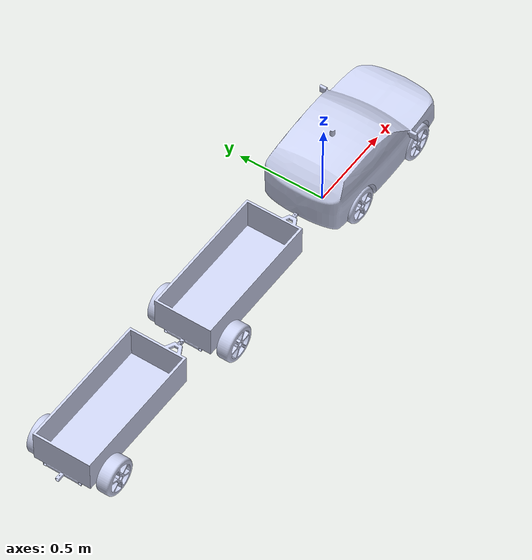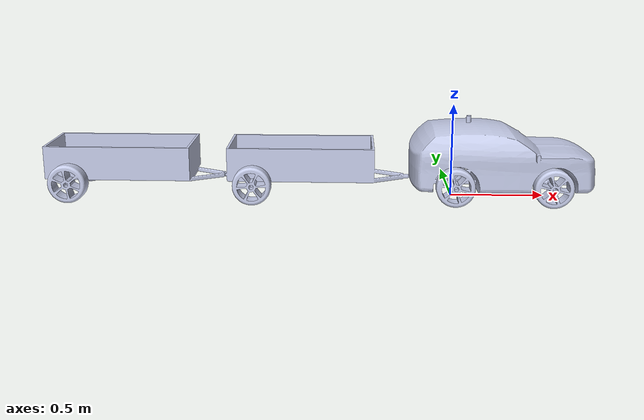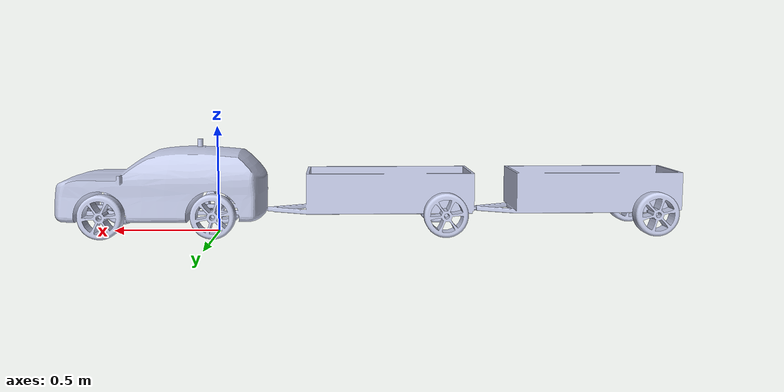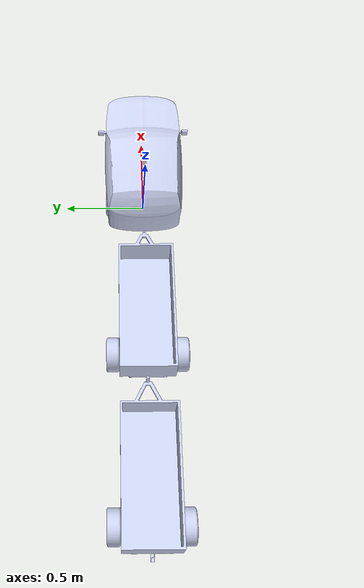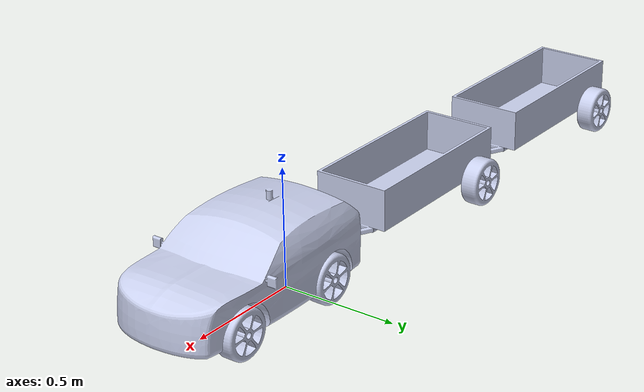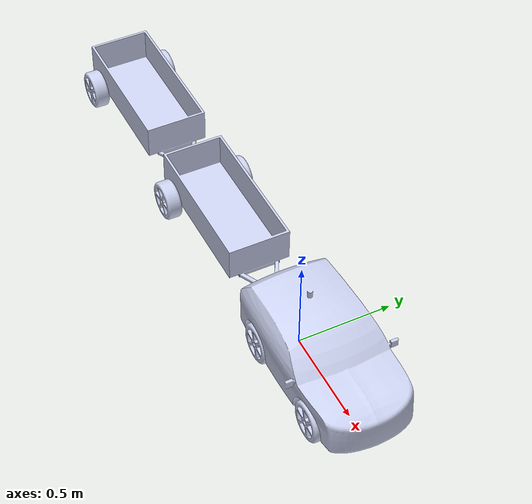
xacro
<?xml version="1.0" ?>

<robot
  name="SUV" xmlns:xacro="https://ros.org/wiki/xacro">
  <link
    name="base_link">
    <inertial>
      <origin
        xyz="0.20578 6.7449E-05 0.23392"
        rpy="0 0 0" />
      <mass
        value="90.229" />
      <inertia
        ixx="2.1481"
        ixy="0.004352"
        ixz="0.4205"
        iyy="6.2811"
        iyz="-0.0018801"
        izz="7.2521" />
    </inertial>
    <visual>
      <origin
        xyz="0 0 0"
        rpy="0 0 0" />
      <geometry>
        <mesh
          filename="package://SUV/meshes/base_link.STL" />
      </geometry>
      <material
        name="">
        <color
          rgba="0.79216 0.81961 0.93333 1" />
      </material>
    </visual>
  </link>

  <link
    name="RearLeftWheel">
    <inertial>
      <origin
        xyz="2.2204E-16 0 2.2204E-16"
        rpy="0 0 0" />
      <mass
        value="1.3962" />
      <inertia
        ixx="0.0051815"
        ixy="-1.0132E-17"
        ixz="-3.1476E-18"
        iyy="0.0090774"
        iyz="-8.3661E-18"
        izz="0.0051815" />
    </inertial>
    <visual>
      <origin
        xyz="0 0 0"
        rpy="0 0 0" />
      <geometry>
        <mesh
          filename="package://SUV/meshes/RearLeftWheel.STL" />
      </geometry>
      <material
        name="">
        <color
          rgba="0.79216 0.81961 0.93333 1" />
      </material>
    </visual>
    <collision>
      <origin
        xyz="0 0 0"
        rpy="0 0 0" />
      <geometry>
        <mesh
          filename="package://SUV/meshes/RearLeftWheel.STL" />
      </geometry>
    </collision>
  </link>
  <joint
    name="RearLeftWheel_Joint"
    type="continuous">
    <origin
      xyz="0 0.2032 0.10144"
      rpy="0 0 0" />
    <parent
      link="base_link" />
    <child
      link="RearLeftWheel" />
    <axis
      xyz="0 1 0" />
  </joint>
  <link
    name="RearRightWheel">
    <inertial>
      <origin
        xyz="2.2204E-16 1.1102E-16 2.2204E-16"
        rpy="0 0 0" />
      <mass
        value="1.3962" />
      <inertia
        ixx="0.0051815"
        ixy="-7.5071E-18"
        ixz="-1.593E-18"
        iyy="0.0090774"
        iyz="-1.7247E-17"
        izz="0.0051815" />
    </inertial>
    <visual>
      <origin
        xyz="0 0 0"
        rpy="0 0 0" />
      <geometry>
        <mesh
          filename="package://SUV/meshes/RearRightWheel.STL" />
      </geometry>
      <material
        name="">
        <color
          rgba="0.79216 0.81961 0.93333 1" />
      </material>
    </visual>
    <collision>
      <origin
        xyz="0 0 0"
        rpy="0 0 0" />
      <geometry>
        <mesh
          filename="package://SUV/meshes/RearRightWheel.STL" />
      </geometry>
    </collision>
  </link>
  <joint
    name="RearRightWheel_Joint"
    type="continuous">
    <origin
      xyz="0 -0.2032 0.10144"
      rpy="0 0 0" />
    <parent
      link="base_link" />
    <child
      link="RearRightWheel" />
    <axis
      xyz="0 1 0" />
  </joint>
  <link
    name="FrontLeftSteer">
    <inertial>
      <origin
        xyz="-1.79856129989275E-14 0.037265343785134 0.000157388248064994"
        rpy="0 0 0" />
      <mass
        value="0.017358141232428" />
      <inertia
        ixx="7.67294854860874E-06"
        ixy="1.58472142546195E-20"
        ixz="-7.86135753705226E-21"
        iyy="7.38363363134266E-07"
        iyz="2.13410869020758E-20"
        izz="7.64761183870118E-06" />
    </inertial>
    <visual>
      <origin
        xyz="0 0 0"
        rpy="0 0 0" />
      <geometry>
        <mesh
          filename="package://SUV/meshes/FrontLeftSteer.STL" />
      </geometry>
      <material
        name="">
        <color
          rgba="0.792156862745098 0.819607843137255 0.933333333333333 1" />
      </material>
    </visual>
  </link>
  <joint
    name="FrontLeftSteer_Joint"
    type="continuous">
    <origin
      xyz="0.508 0.1397 0.10144"
      rpy="0 0 0" />
    <parent
      link="base_link" />
    <child
      link="FrontLeftSteer" />
    <axis
      xyz="0 0 1" />
  </joint>
  <link
    name="FrontLeftWheel">
    <inertial>
      <origin
        xyz="0 -2.22044604925031E-16 2.22044604925031E-16"
        rpy="0 0 0" />
      <mass
        value="1.39619583298456" />
      <inertia
        ixx="0.0051814826332267"
        ixy="-1.19452155290798E-17"
        ixz="6.85526197351124E-19"
        iyy="0.00907736130581274"
        iyz="-1.30080636187624E-17"
        izz="0.0051814826332267" />
    </inertial>
    <visual>
      <origin
        xyz="0 0 0"
        rpy="0 0 0" />
      <geometry>
        <mesh
          filename="package://SUV/meshes/FrontLeftWheel.STL" />
      </geometry>
      <material
        name="">
        <color
          rgba="0.792156862745098 0.819607843137255 0.933333333333333 1" />
      </material>
    </visual>
    <collision>
      <origin
        xyz="0 0 0"
        rpy="0 0 0" />
      <geometry>
        <mesh
          filename="package://SUV/meshes/FrontLeftWheel.STL" />
      </geometry>
    </collision>
  </link>
  <joint
    name="FrontLeftWheel_Joint"
    type="continuous">
    <origin
      xyz="0 0.0635 0.00015739"
      rpy="0 0 0" />
    <parent
      link="FrontLeftSteer" />
    <child
      link="FrontLeftWheel" />
    <axis
      xyz="0 1 0" />
  </joint>
  <link
    name="FrontRightSteer">
    <inertial>
      <origin
        xyz="-1.1768E-14 -0.037265 0.00015739"
        rpy="0 0 0" />
      <mass
        value="0.017358" />
      <inertia
        ixx="7.6729E-06"
        ixy="1.7249E-20"
        ixz="-8.0895E-21"
        iyy="7.3836E-07"
        iyz="1.3886E-20"
        izz="7.6476E-06" />
    </inertial>
    <visual>
      <origin
        xyz="0 0 0"
        rpy="0 0 0" />
      <geometry>
        <mesh
          filename="package://SUV/meshes/FrontRightSteer.STL" />
      </geometry>
      <material
        name="">
        <color
          rgba="0.79216 0.81961 0.93333 1" />
      </material>
    </visual>
  </link>
  <joint
    name="FrontRightSteer_Joint"
    type="continuous">
    <origin
      xyz="0.508 -0.1397 0.10144"
      rpy="0 0 0" />
    <parent
      link="base_link" />
    <child
      link="FrontRightSteer" />
    <axis
      xyz="0 0 1" />
  </joint>
  <link
    name="FrontRightWheel">
    <inertial>
      <origin
        xyz="2.22044604925031E-16 0 0"
        rpy="0 0 0" />
      <mass
        value="1.39619583298457" />
      <inertia
        ixx="0.00518148263322671"
        ixy="-1.64532585220915E-17"
        ixz="6.38492740808577E-18"
        iyy="0.00907736130581276"
        iyz="-7.53601200300198E-18"
        izz="0.00518148263322672" />
    </inertial>
    <visual>
      <origin
        xyz="0 0 0"
        rpy="0 0 0" />
      <geometry>
        <mesh
          filename="package://SUV/meshes/FrontRightWheel.STL" />
      </geometry>
      <material
        name="">
        <color
          rgba="0.792156862745098 0.819607843137255 0.933333333333333 1" />
      </material>
    </visual>
    <collision>
      <origin
        xyz="0 0 0"
        rpy="0 0 0" />
      <geometry>
        <mesh
          filename="package://SUV/meshes/FrontRightWheel.STL" />
      </geometry>
    </collision>
  </link>
  <joint
    name="FrontRightWheel_Joint"
    type="continuous">
    <origin
      xyz="0 -0.0635 0.00015739"
      rpy="0 0 0" />
    <parent
      link="FrontRightSteer" />
    <child
      link="FrontRightWheel" />
    <axis
      xyz="0 1 0" />
  </joint>
  <link
    name="Hitch1">
    <inertial>
      <origin
        xyz="-0.571383258799901 -1.74917281658971E-07 0.0822815332976223"
        rpy="0 0 0" />
      <mass
        value="5.9801503611173" />
      <inertia
        ixx="0.123019502397971"
        ixy="3.82559087295855E-08"
        ixz="-5.64052916088022E-10"
        iyy="0.438975610025772"
        iyz="-1.38605410830019E-10"
        izz="0.528069911621096" />
    </inertial>
    <visual>
      <origin
        xyz="0 0 0"
        rpy="0 0 0" />
      <geometry>
        <mesh
          filename="package://SUV/meshes/Hitch1.STL" />
      </geometry>
      <material
        name="">
        <color
          rgba="0.792156862745098 0.819607843137255 0.933333333333333 1" />
      </material>
    </visual>
  </link>
  <joint
    name="Hitch1_Joint"
    type="continuous">
    <origin
      xyz="-0.24495 0 0.10144"
      rpy="0 0 0" />
    <parent
      link="base_link" />
    <child
      link="Hitch1" />
    <axis
      xyz="0 0 1" />
  </joint>
  <link
    name="LeftTrailer1">
    <inertial>
      <origin
        xyz="1.66533453693773E-16 -2.22044604925031E-16 0"
        rpy="0 0 0" />
      <mass
        value="1.39619583298456" />
      <inertia
        ixx="0.00518148263322669"
        ixy="-1.49045809926886E-17"
        ixz="-3.49787595846701E-18"
        iyy="0.00907736130581273"
        iyz="-1.60998995089318E-17"
        izz="0.00518148263322669" />
    </inertial>
    <visual>
      <origin
        xyz="0 0 0"
        rpy="0 0 0" />
      <geometry>
        <mesh
          filename="package://SUV/meshes/LeftTrailer1.STL" />
      </geometry>
      <material
        name="">
        <color
          rgba="0.792156862745098 0.819607843137255 0.933333333333333 1" />
      </material>
    </visual>
    <collision>
      <origin
        xyz="0 0 0"
        rpy="0 0 0" />
      <geometry>
        <mesh
          filename="package://SUV/meshes/LeftTrailer1.STL" />
      </geometry>
    </collision>
  </link>
  <joint
    name="LeftTrailer1_Joint"
    type="continuous">
    <origin
      xyz="-0.82362 0.2032 3.2E-05"
      rpy="0 0 0" />
    <parent
      link="Hitch1" />
    <child
      link="LeftTrailer1" />
    <axis
      xyz="0 1 0" />
  </joint>
  <link
    name="RightTrailer1">
    <inertial>
      <origin
        xyz="5.55111512312578E-17 0 2.22044604925031E-16"
        rpy="0 0 0" />
      <mass
        value="1.39619583298456" />
      <inertia
        ixx="0.0051814826332267"
        ixy="-1.65394826681313E-17"
        ixz="-2.40739753654012E-18"
        iyy="0.00907736130581274"
        iyz="-1.54647964627013E-17"
        izz="0.0051814826332267" />
    </inertial>
    <visual>
      <origin
        xyz="0 0 0"
        rpy="0 0 0" />
      <geometry>
        <mesh
          filename="package://SUV/meshes/RightTrailer1.STL" />
      </geometry>
      <material
        name="">
        <color
          rgba="0.792156862745098 0.819607843137255 0.933333333333333 1" />
      </material>
    </visual>
    <collision>
      <origin
        xyz="0 0 0"
        rpy="0 0 0" />
      <geometry>
        <mesh
          filename="package://SUV/meshes/RightTrailer1.STL" />
      </geometry>
    </collision>
  </link>
  <joint
    name="RightTrailer1_Joint"
    type="continuous">
    <origin
      xyz="-0.82362 -0.20574 3.2E-05"
      rpy="0 0 0" />
    <parent
      link="Hitch1" />
    <child
      link="RightTrailer1" />
    <axis
      xyz="0 1 0" />
  </joint>
  <link
    name="Hitch2">
    <inertial>
      <origin
        xyz="-0.5713832587999 -1.74917281547948E-07 0.0822495332976192"
        rpy="0 0 0" />
      <mass
        value="5.98015036111735" />
      <inertia
        ixx="0.123019502397972"
        ixy="3.82559082887827E-08"
        ixz="-5.64053047096979E-10"
        iyy="0.438975610025775"
        iyz="-1.3860532021831E-10"
        izz="0.528069911621099" />
    </inertial>
    <visual>
      <origin
        xyz="0 0 0"
        rpy="0 0 0" />
      <geometry>
        <mesh
          filename="package://SUV/meshes/Hitch2.STL" />
      </geometry>
      <material
        name="">
        <color
          rgba="0.792156862745098 0.819607843137255 0.933333333333333 1" />
      </material>
    </visual>
  </link>
  <joint
    name="Hitch2_Joint"
    type="continuous">
    <origin
      xyz="-0.98102 0 3.2E-05"
      rpy="0 0 0" />
    <parent
      link="Hitch1" />
    <child
      link="Hitch2" />
    <axis
      xyz="0 0 1" />
  </joint>
  <link
    name="LeftTrailer2">
    <inertial>
      <origin
        xyz="0 -2.22044604925031E-16 0"
        rpy="0 0 0" />
      <mass
        value="1.39619583298456" />
      <inertia
        ixx="0.0051814826332267"
        ixy="-1.31981558346315E-17"
        ixz="2.11483834534612E-18"
        iyy="0.00907736130581275"
        iyz="-1.07555294615332E-17"
        izz="0.00518148263322671" />
    </inertial>
    <visual>
      <origin
        xyz="0 0 0"
        rpy="0 0 0" />
      <geometry>
        <mesh
          filename="package://SUV/meshes/LeftTrailer2.STL" />
      </geometry>
      <material
        name="">
        <color
          rgba="0.792156862745098 0.819607843137255 0.933333333333333 1" />
      </material>
    </visual>
    <collision>
      <origin
        xyz="0 0 0"
        rpy="0 0 0" />
      <geometry>
        <mesh
          filename="package://SUV/meshes/LeftTrailer2.STL" />
      </geometry>
    </collision>
  </link>
  <joint
    name="LeftTrailer2_Joint"
    type="continuous">
    <origin
      xyz="-0.82362 0.2032 0"
      rpy="0 0 0" />
    <parent
      link="Hitch2" />
    <child
      link="LeftTrailer2" />
    <axis
      xyz="0 1 0" />
  </joint>
  <link
    name="RightTrailer2">
    <inertial>
      <origin
        xyz="-1.11022302462516E-16 0 2.22044604925031E-16"
        rpy="0 0 0" />
      <mass
        value="1.39619583298456" />
      <inertia
        ixx="0.0051814826332267"
        ixy="-8.24116394978783E-18"
        ixz="-2.53874847422681E-18"
        iyy="0.00907736130581275"
        iyz="-1.66388203000654E-17"
        izz="0.0051814826332267" />
    </inertial>
    <visual>
      <origin
        xyz="0 0 0"
        rpy="0 0 0" />
      <geometry>
        <mesh
          filename="package://SUV/meshes/RightTrailer2.STL" />
      </geometry>
      <material
        name="">
        <color
          rgba="0.792156862745098 0.819607843137255 0.933333333333333 1" />
      </material>
    </visual>
    <collision>
      <origin
        xyz="0 0 0"
        rpy="0 0 0" />
      <geometry>
        <mesh
          filename="package://SUV/meshes/RightTrailer2.STL" />
      </geometry>
    </collision>
  </link>
  <joint
    name="RightTrailer2_Joint"
    type="continuous">
    <origin
      xyz="-0.82362 -0.2032 0"
      rpy="0 0 0" />
    <parent
      link="Hitch2" />
    <child
      link="RightTrailer2" />
    <axis
      xyz="0 1 0" />
  </joint>
  <link
    name="Lidar">
  </link>
  <joint
    name="Lidar_Joint"
    type="fixed">
    <origin
      xyz="0.0819997270807393 0.00177776795566731 0.423784484115624"
      rpy="0 0 0" />
    <parent
      link="base_link" />
    <child
      link="Lidar" />
    <axis
      xyz="0 0 0" />
  </joint>

  <ros2_control name="GazeboSystem" type="system">
    <hardware>
      <plugin>gazebo_ros2_control/GazeboSystem</plugin>
    </hardware>

    <joint name="FrontLeftWheel_Joint">
      <command_interface name="velocity">
        <param name="min">-1000.0</param>
        <param name="max">1000.0</param>
      </command_interface>
      <state_interface name="position"/>
      <state_interface name="velocity"/>
    </joint>

    <joint name="FrontRightWheel_Joint">
      <command_interface name="velocity">
        <param name="min">-1000.0</param>
        <param name="max">1000.0</param>
      </command_interface>
      <state_interface name="position"/>
      <state_interface name="velocity"/>
    </joint>

    <joint name="RearRightWheel_Joint">
      <command_interface name="velocity">
        <param name="min">-1000.0</param>
        <param name="max">1000.0</param>
      </command_interface>
      <state_interface name="position"/>
      <state_interface name="velocity"/>
    </joint>

    <joint name="RearLeftWheel_Joint">
      <command_interface name="velocity">
        <param name="min">-1000.0</param>
        <param name="max">1000.0</param>
      </command_interface>
      <state_interface name="position"/>
      <state_interface name="velocity"/>
    </joint>

    <joint name="LeftTrailer1_Joint">
      <command_interface name="velocity">
        <param name="min">-1000.0</param>
        <param name="max">1000.0</param>
      </command_interface>
      <state_interface name="position"/>
      <state_interface name="velocity"/>
    </joint>

    <joint name="RightTrailer1_Joint">
      <command_interface name="velocity">
        <param name="min">-1000.0</param>
        <param name="max">1000.0</param>
      </command_interface>
      <state_interface name="position"/>
      <state_interface name="velocity"/>
    </joint>

    <joint name="LeftTrailer2_Joint">
      <command_interface name="velocity">
        <param name="min">-1000.0</param>
        <param name="max">1000.0</param>
      </command_interface>
      <state_interface name="position"/>
      <state_interface name="velocity"/>
    </joint>

    <joint name="RightTrailer2_Joint">
      <command_interface name="velocity">
        <param name="min">-1000.0</param>
        <param name="max">1000.0</param>
      </command_interface>
      <state_interface name="position"/>
      <state_interface name="velocity"/>
    </joint>

    <joint name="FrontLeftSteer_Joint">
      <command_interface name="position">
        <param name="min">-3.14</param>
        <param name="max">3.14</param>
      </command_interface>
      <state_interface name="position"/>
      <state_interface name="velocity"/>
    </joint>

    <joint name="FrontRightSteer_Joint">
      <command_interface name="position">
        <param name="min">-3.14</param>
        <param name="max">3.14</param>
      </command_interface>
      <state_interface name="position"/>
      <state_interface name="velocity"/>
    </joint>
  </ros2_control>

  <gazebo>
    <plugin filename="libgazebo_ros2_control.so" name="gazebo_ros2_control">
      <parameters>$(find SUV)/config/control.yaml</parameters>
    </plugin>
  </gazebo>

  <!-- Added this plugin just to get the odom, I do not intend to control vehicle using cmd_vel-->
  <gazebo>
    <plugin name="object_controller" filename="libgazebo_ros_planar_move.so">
      <commandTopic>cmd_vel</commandTopic>
      <odometryTopic>odom</odometryTopic>
      <odometryFrame>odom</odometryFrame>
      <odometryRate>20.0</odometryRate>
      <robotBaseFrame>base_footprint</robotBaseFrame>
    </plugin>
  </gazebo>

  <gazebo reference="Lidar">
  <sensor name="lidar" type="ray">
    <pose>0.0 0.0 0.0 0 0 0</pose>
    <always_on>true</always_on>
    <visualize>true</visualize>
    <update_rate>5</update_rate>
    <ray>
      <scan>
        <horizontal>
          <samples>360</samples>
          <resolution>1.00000</resolution>
          <min_angle>0.000000</min_angle>
          <max_angle>6.280000</max_angle>
        </horizontal>
      </scan>
      <range>
        <min>0.120000</min>
        <max>3.5</max>
        <resolution>0.015000</resolution>
      </range>
      <noise>
        <type>gaussian</type>
        <mean>0.0</mean>
        <stddev>0.01</stddev>
      </noise>
    </ray>
    <plugin name="scan" filename="libgazebo_ros_ray_sensor.so">
      <ros>
        <remapping>~/out:=scan</remapping>
      </ros>
      <output_type>sensor_msgs/LaserScan</output_type>
      <frame_name>base_link</frame_name>
    </plugin>
  </sensor>
  </gazebo>

  <gazebo reference="base_link">
  <gravity>true</gravity>
  <sensor name="imu_sensor" type="imu">
    <always_on>true</always_on>
    <update_rate>100</update_rate>
    <visualize>true</visualize>
    <topic>__default_topic__</topic>
    <plugin filename="libgazebo_ros_imu_sensor.so" name="imu_plugin">
      <topicName>imu</topicName>
      <bodyName>base_link</bodyName>
      <updateRateHZ>10.0</updateRateHZ>
      <gaussianNoise>0.0</gaussianNoise>
      <xyzOffset>0 0 0</xyzOffset>
      <rpyOffset>0 0 0</rpyOffset>
      <frameName>base_link</frameName>
      <initialOrientationAsReference>false</initialOrientationAsReference>
    </plugin>
    <pose>0 0 0 0 0 0</pose>
  </sensor>
</gazebo>

</robot>
